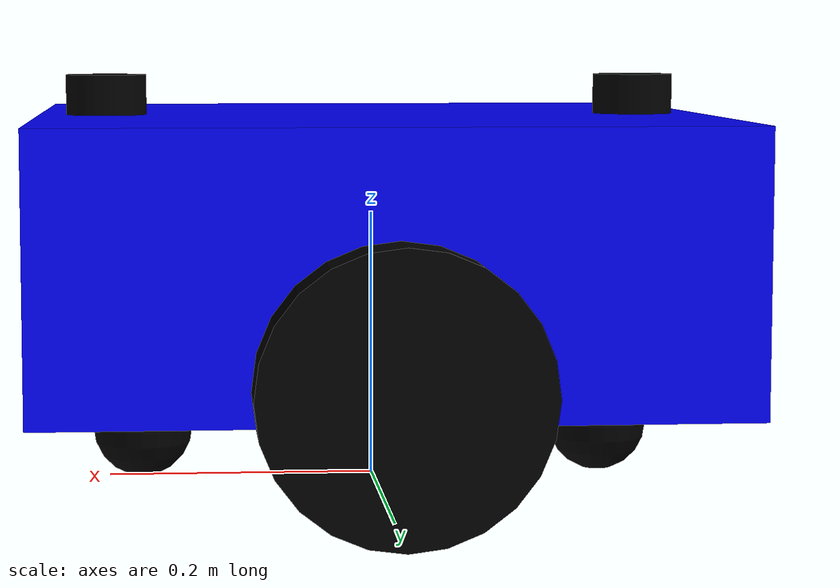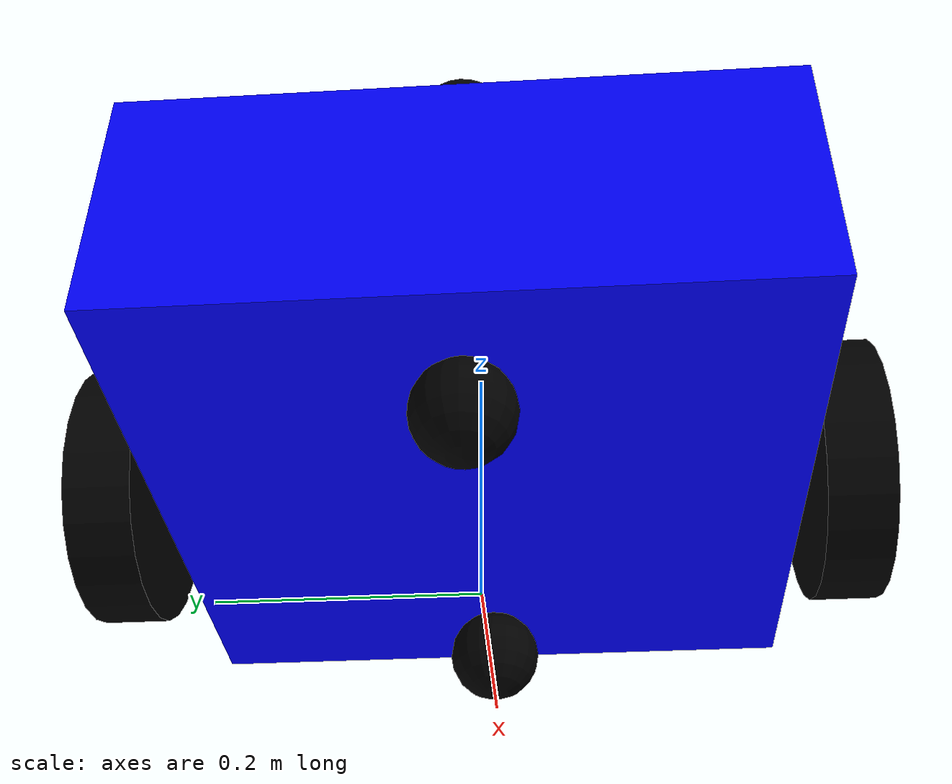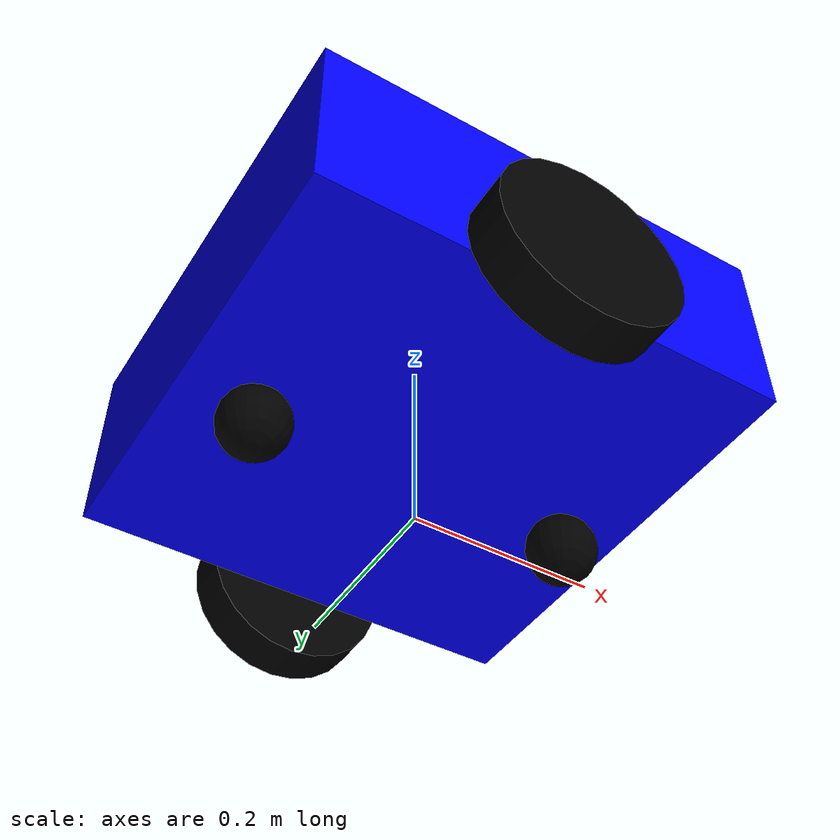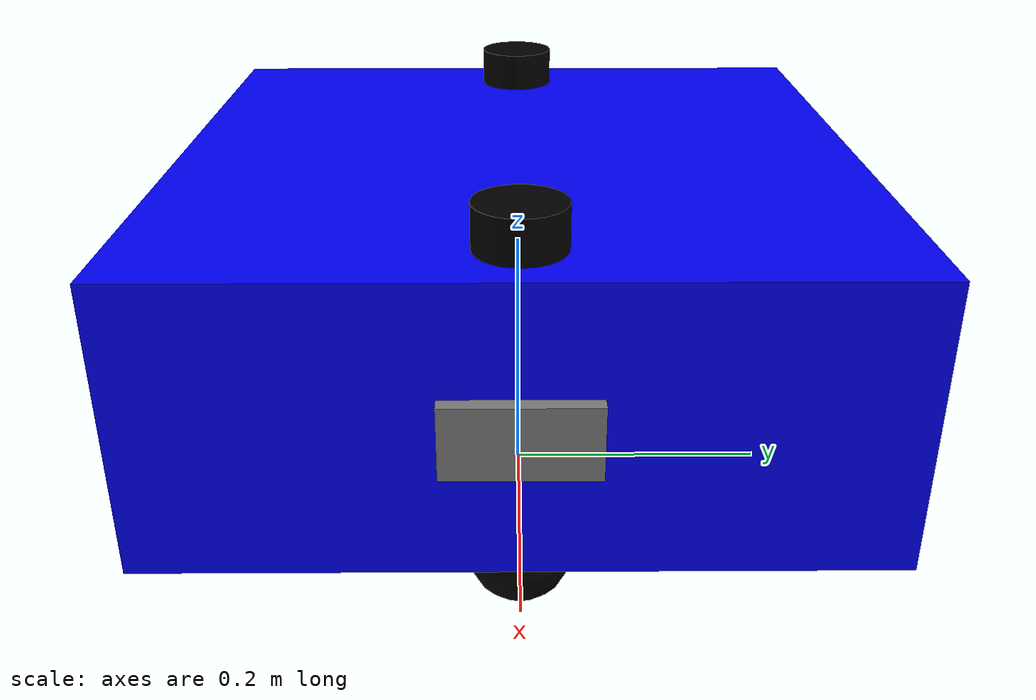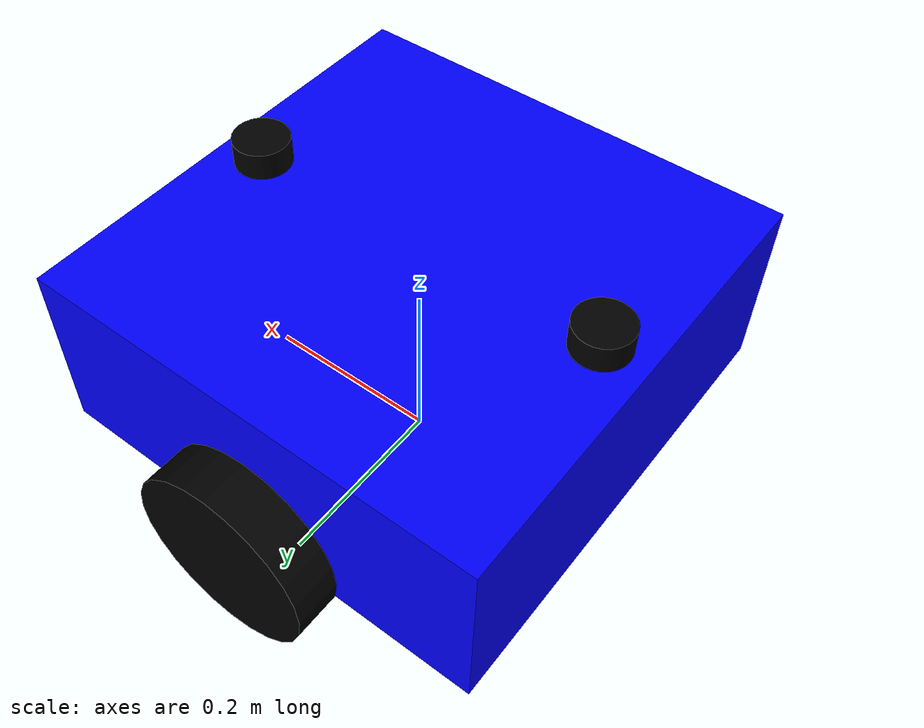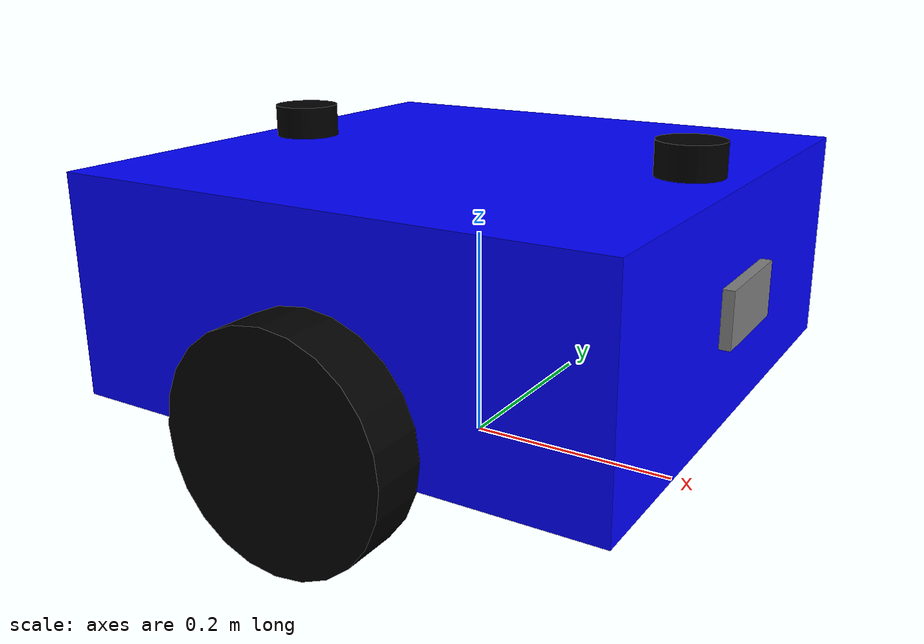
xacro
<?xml version ="1.0"?>

<robot name="agv_mini_manipulator_mobile_base" xmlns:xacro="http://www.ros.org/wiki/xacro">

    <xacro:include filename="$(find agv_mini_manipulator_description)/urdf/common_properties.xacro"/>
    <xacro:include filename="$(find agv_mini_manipulator_description)/urdf/common_hardware.xacro"/>

    <!-- Mobile Base-->
    <xacro:include filename="$(find agv_mini_manipulator_description)/urdf/mobile_base/mobile_base.xacro"/>
    <xacro:include filename="$(find agv_mini_manipulator_description)/urdf/mobile_base/mobile_base_gazebo.xacro"/>
    <!-- Sensors -->
    <xacro:include filename="$(find agv_mini_manipulator_description)/urdf/sensors/camera.xacro"/>
    <xacro:include filename="$(find agv_mini_manipulator_description)/urdf/sensors/lidar.xacro"/>
    <xacro:include filename="$(find agv_mini_manipulator_description)/urdf/sensors/imu.xacro"/>

</robot>

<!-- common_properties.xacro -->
<robot xmlns:xacro="http://www.ros.org/wiki/xacro">
    <!-- Materials -->
    <material name="blue">
        <color rgba="0 0 1 1"/>
    </material>

    <material name="black">
        <color rgba="0 0 0 1"/>
    </material>

    <material name="gray">
        <color rgba="0.5 0.5 0.5 1"/>
    </material>

    <material name="orange">
        <color rgba="1 0.5 0 1"/>
    </material>

    <!-- Common Xacros -->
    <xacro:macro name="box_inertia" params="m o_xyz o_rpy length width height">
            <inertial>
                <mass value="${m}"/>
                <origin xyz="${o_xyz}" rpy="${o_rpy}"/>
                <inertia ixx="${m /12 * (width**2 + height**2)}" ixy="0" ixz="0"
                         iyy="${m /12 * (length**2 + height**2)}" iyz="0"
                         izz="${m /12 * (length**2 + width**2)}"/>
            </inertial>
    </xacro:macro>

    <xacro:macro name="box_link" params="link_name m o_xyz o_rpy length width height material_name">
        <link name="${link_name}">
            <visual>
                <geometry>
                <box size="${length} ${width} ${height}"/>
                </geometry>
                <origin xyz="${o_xyz}" rpy="${o_rpy}"/>
                <material name="${material_name}"/>
            </visual>

            <collision>
                <geometry>
                <box size="${length} ${width} ${height}"/>
                </geometry>
                <origin xyz="${o_xyz}" rpy="${o_rpy}"/>
            </collision>

            <xacro:box_inertia m="${m}" o_xyz="${o_xyz}" o_rpy="${o_rpy}"
            length="${length}" width="${width}" height="${height}"/>
        </link>
    </xacro:macro>

    <xacro:macro name="cylinder_inertia" params="m radius length o_xyz o_rpy">
        <inertial>
            <mass value="${m}"/>
            <origin xyz="${o_xyz}" rpy="${o_rpy}"/>
            <inertia ixx="${m / 12 * (3*radius**2 + length**2)}" ixy="0" ixz="0"
                        iyy="${m / 12 * (3*radius**2 + length**2)}" iyz="0"
                        izz="${m / 2 * radius**2}"/>
        </inertial>
    </xacro:macro>

    <xacro:macro name="cylinder" params="link_name m o_xyz o_rpy radius length material_name">
        <link name="${link_name}">
            <visual>
                <geometry>
                    <cylinder radius="${radius}" length="${length}"/>
                </geometry>
                <origin xyz="${o_xyz}" rpy="${o_rpy}"/>
                <material name="${material_name}"/>
            </visual>

            <collision>
                <geometry>
                    <cylinder radius="${radius}" length="${length}"/>
                </geometry>
                <origin xyz="${o_xyz}" rpy="${o_rpy}"/>
            </collision>

            <xacro:cylinder_inertia
            m="${m}" radius="${radius}" length="${length}"
            o_xyz="${o_xyz}" o_rpy="${o_rpy}"/>
        </link>
    </xacro:macro>

    <xacro:macro name="sphere_inertia" params="m radius o_xyz o_rpy">
        <inertial>
            <mass value="${m}"/>
            <origin xyz="${o_xyz}" rpy="${o_rpy}"/>
            <inertia ixx="${2/5 * m * (radius)**2}" ixy="0" ixz="0"
                     iyy="${2/5 * m * (radius)**2}" iyz="0"
                     izz="${2/5 * m * (radius)**2}"/>
        </inertial>
    </xacro:macro>

    <xacro:macro name="sphere" params="link_name m o_xyz o_rpy radius material_name">
        <link name="${link_name}">
            <visual>
                <geometry>
                <sphere radius="${radius}"/>
                </geometry>
                <origin xyz="${o_xyz}" rpy="${o_rpy}"/>
                <material name="${material_name}"/>
            </visual>

            <collision>
                <geometry>
                <sphere radius="${radius}"/>
                </geometry>
                <origin xyz="${o_xyz}" rpy="${o_rpy}"/>
            </collision>

            <xacro:sphere_inertia
            m="${m}" radius="${radius}"
            o_xyz="${o_xyz}" o_rpy="${o_rpy}"/>
        </link>
    </xacro:macro>

    <!-- Joint Xacros -->
    <xacro:macro name="nonzero_inertia">
        <inertial>
            <mass value="0.0001"/>
            <origin xyz="0 0 0" rpy="0 0 0"/>
            <inertia ixx="1e-9" ixy="0" ixz="0"
                     iyy="1e-9" iyz="0"
                     izz="1e-9"/>
        </inertial>
    </xacro:macro>

    <xacro:macro name="three_axis_joint" params="prefix parent_link">
        <link name="${prefix}_link_x">
            <xacro:nonzero_inertia/>
        </link>
        <joint name="${prefix}_joint_x" type="continuous">
            <parent link="${parent_link}"/>
            <child link="${prefix}_link_x"/>
            <origin xyz="0 0 0" rpy="0 0 0"/>
            <axis xyz="1 0 0"/>
        </joint>

        <link name="${prefix}_link_y">
            <xacro:nonzero_inertia/>
        </link>
        <joint name="${prefix}_joint_y" type="continuous">
            <parent link="${prefix}_link_x"/>
            <child link="${prefix}_link_y"/>
            <origin xyz="0 0 0" rpy="0 0 0"/>
            <axis xyz="0 1 0"/>
        </joint>

        <link name="${prefix}_link_z">
            <xacro:nonzero_inertia/>
        </link>
        <joint name="${prefix}_joint_z" type="continuous">
            <parent link="${prefix}_link_y"/>
            <child link="${prefix}_link_z"/>
            <origin xyz="0 0 0" rpy="0 0 0"/>
            <axis xyz="0 0 1"/>
        </joint>
    </xacro:macro>

</robot>

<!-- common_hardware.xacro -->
<robot xmlns:xacro="http://www.ros.org/wiki/xacro">

    <xacro:macro name="wheel" params="prefix m o_xyz o_rpy wheel_radius wheel_thickness">
        <link name="${prefix}_wheel_link">
            <visual>
                <geometry>
                    <cylinder radius="${wheel_radius}" length="${wheel_thickness}"/>
                </geometry>
                <origin xyz="${o_xyz}" rpy="${o_rpy}"/>
                <material name="black"/>
            </visual>

            <collision>
                <geometry>
                <sphere radius="${wheel_radius}"/>
                </geometry>
                <origin xyz="${o_xyz}" rpy="${o_rpy}"/>
            </collision>

            <xacro:cylinder_inertia
            m="${m}" radius="${wheel_radius}" length="${wheel_thickness}"
            o_xyz="${o_xyz}" o_rpy="${o_rpy}"/>
        </link>
    </xacro:macro>

</robot>

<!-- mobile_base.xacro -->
<robot xmlns:xacro="http://www.ros.org/wiki/xacro">

    <!-- Variables -->
    <xacro:property name="base_length" value="0.5"/>
    <xacro:property name="base_width" value="0.5"/>
    <xacro:property name="base_height" value="0.2"/>

    <xacro:property name="wheel_offset" value="0.075"/>
    <xacro:property name="wheel_thickness" value="0.05"/>
    <xacro:property name="wheel_radius" value="0.1"/>

    <!-- base_footprint_base_link_joint -->
    <link name="base_footprint"/>

    <xacro:box_link link_name="base_link" m="5.0" o_xyz="0 0 0" o_rpy="0 0 0"
    length="${base_length}" width="${base_width}" height="${base_height}"
    material_name="blue"/>

    <joint name="base_footprint_base_link_joint" type="fixed">
        <parent link="base_footprint"/>
        <child link="base_link"/>
        <origin xyz="0 0 ${base_height / 2.0 + wheel_offset}" rpy="0 0 0"/>
    </joint>
    <!-- base_footprint_base_link_joint -->

    <!-- base_link_right_wheel_joint -->
    <xacro:wheel prefix="right" m="2.0" o_xyz="0 0 0" o_rpy="0 0 0" wheel_radius="${wheel_radius}" wheel_thickness="${wheel_thickness}"/>
    <joint name="base_link_right_wheel_joint" type="continuous">
        <parent link="base_link"/>
        <child link="right_wheel_link"/>
        <origin xyz="0.0 ${base_width / 2.0 + wheel_thickness / 2.0} ${-1.0 * (base_height / 2.0 - wheel_radius + wheel_offset)}"
        rpy="${pi / 2.0} 0 0"/>
        <axis xyz="0 0 1"/>
        <limit effort = "20.0" velocity="10.0"/>
    </joint>
    <!-- base_link_right_wheel_joint -->

    <!-- base_link_left_wheel_joint -->
    <xacro:wheel prefix="left" m="2.0" o_xyz="0 0 0" o_rpy="0 0 0" wheel_radius="${wheel_radius}" wheel_thickness="${wheel_thickness}"/>
    <joint name="base_link_left_wheel_joint" type="continuous">
        <parent link="base_link"/>
        <child link="left_wheel_link"/>
        <origin xyz="0.0 ${-1.0*(base_width / 2.0 + wheel_thickness / 2.0)} ${-1.0 * (base_height / 2.0 - wheel_radius + wheel_offset)}"
        rpy="${pi / 2.0} 0 0"/>
        <axis xyz="0 0 1"/>
        <limit effort = "20.0" velocity="10.0"/>
    </joint>
    <!-- base_link_left_wheel_joint -->

    <!-- base_link_front_wheel_joint -->
    <xacro:sphere link_name="front_castor_wheel_link" m="0.75" o_xyz="0 0 0" o_rpy="0 0 0"
    radius="${wheel_offset/2.0}" material_name="black"/>
    <joint name="base_link_front_wheel_joint" type="fixed">
        <parent link="base_link"/>
        <child link="front_castor_wheel_link"/>
        <origin xyz="${base_length / 2.0 - 0.075} 0.0 ${-1.0*(base_height / 2.0 + wheel_offset / 2.0)}"
        rpy="0 0 0"/>
    </joint>
    <xacro:three_axis_joint prefix="front_castor_wheel" parent_link="front_castor_wheel_link"/>
    <!-- base_link_front_wheel_joint -->

    <!-- base_link_back_wheel_joint -->
    <xacro:sphere link_name="back_castor_wheel_link" m="0.75" o_xyz="0 0 0" o_rpy="0 0 0"
    radius="${wheel_offset/2.0}" material_name="black"/>

    <joint name="base_link_back_wheel_joint" type="fixed">
        <parent link="base_link"/>
        <child link="back_castor_wheel_link"/>
        <origin xyz="${-1.0*(base_length / 2.0 - 0.075)} 0.0 ${-1.0*(base_height / 2.0 + wheel_offset / 2.0)}"
        rpy="0 0 0"/>
    </joint>
    <xacro:three_axis_joint prefix="back_castor_wheel" parent_link="back_castor_wheel_link"/>
    <!-- base_link_back_wheel_joint -->

</robot>

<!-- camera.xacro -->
<robot xmlns:xacro="http://www.ros.org/wiki/xacro">

    <xacro:property name="camera_length" value="0.01"/>
    <xacro:property name="camera_width" value="0.1"/>
    <xacro:property name="camera_height" value="0.05"/>

   <!-- base_link_rgbd_camera_joint -->
    <xacro:box_link m="0.5" o_xyz="0 0 0" o_rpy="0 0 0"
    link_name="rgb_camera_link" length="${camera_length}"
    width="${camera_width}" height="${camera_height}" material_name="gray"/>

    <joint name="base_link_rgbd_camera_joint" type="fixed">
        <parent link="base_link"/>
        <child link="rgb_camera_link"/>
        <origin xyz="${base_length / 2.0 + camera_length / 2.0} 0 0" rpy="0 0 0"/>
    </joint>
    <!-- base_link_rgbd_camera_joint -->

    <link name="rgb_camera_optical_link"/>
    <joint name="rgb_camera_optical_joint" type="fixed">
        <parent link="rgb_camera_link"/>
        <child link="rgb_camera_optical_link"/>
        <origin xyz="0 0 0" rpy="${-pi/2.0} 0 ${-pi/2.0}"/>
    </joint>

    <gazebo reference="rgb_camera_link">
        <sensor name="rgb_camera" type="camera">
            <always_on>1</always_on>
            <update_rate>10</update_rate>
            <visualize>true</visualize>
            <topic>camera/image_raw</topic>
            <camera>
                <optical_frame_id>rgb_camera_optical_link</optical_frame_id>
                <camera_info_topic>camera/camera_info</camera_info_topic>

                <horizontal_fov>1.658</horizontal_fov>

                    <!-- fx = fy = width / ( 2 * tan (hfov / 2 ) ) -->
                    <!-- cx = ( width - 1 ) / 2 -->
                    <!-- cy = ( height - 1 ) / 2 -->

                <distortion>
                    <k1>0.0</k1>
                    <k2>0.0</k2>
                    <k3>0.0</k3>
                    <p1>0.0</p1>
                    <p2>0.0</p2>
                    <center>0.5 0.5</center>
                </distortion>

                <image>
                    <width>320</width>
                    <height>240</height>
                    <format>R8G8B8</format>
                </image>

                <clip>
                    <near>0.01</near>
                    <far>200</far>
                </clip>

                <noise>
                    <type>gaussian</type>
                    <mean>0</mean>
                    <stddev>0.007</stddev>
                </noise>
            </camera>
       </sensor>
    </gazebo>

</robot>

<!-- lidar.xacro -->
<robot xmlns:xacro="http://www.ros.org/wiki/xacro" >
    <!-- Variables -->
    <xacro:property name="lidar_height" value="0.03"/>
    <xacro:property name="lidar_radius" value="0.03"/>

    <!-- base_link_lidar_front_joint -->
    <xacro:cylinder link_name="front_lidar_link" m="0.5" o_xyz="0 0 0" o_rpy="0 0 0"
    radius="${lidar_radius}" length="${lidar_height}" material_name="black"/>

    <joint name="base_link_lidar_front_joint" type="fixed">
        <parent link="base_link"/>
        <child link="front_lidar_link"/>
        <origin xyz="${base_length / 2.0 - 0.05} 0.0 ${base_height / 2.0 + lidar_height / 2.0}"
        rpy="0 0 0"/>
    </joint>

    <gazebo reference="front_lidar_link">
        <sensor name="front_lidar_link" type="gpu_lidar">
                <topic>scan/front</topic>
                <visualize>true</visualize>
                <update_rate>10</update_rate>
                <gz_frame_id>front_lidar_link</gz_frame_id>

                <lidar>
                    <scan>
                        <horizontal>
                            <samples>20</samples>
                            <resolution>1</resolution>
                            <min_angle>${-5*pi / 8.0}</min_angle>
                            <max_angle>${5*pi / 8.0}</max_angle>
                        </horizontal>
                    </scan>
                    <range>
                        <min>0.05</min>
                        <max>15</max>
                        <resolution>0.01</resolution>
                    </range>
                    <noise>
                        <type>gaussian</type>
                        <mean>0</mean>
                        <stddev>0.01</stddev>
                    </noise>
                </lidar>

            </sensor>
    </gazebo>

    <!-- base_link_lidar_front_joint -->

    <!-- base_link_lidar_back_joint -->
    <xacro:cylinder link_name="back_lidar_link" m="0.5" o_xyz="0 0 0" o_rpy="0 0 0"
    radius="${lidar_radius}" length="${lidar_height}" material_name="black"/>

    <joint name="base_link_lidar_back_joint" type="fixed">
        <parent link="base_link"/>
        <child link="back_lidar_link"/>
        <origin xyz="${-1.0*(base_length / 2.0 - 0.05)} 0.0 ${base_height / 2.0 + lidar_height / 2.0}"
        rpy="0 0 ${pi / 2.0}"/>
    </joint>

    <gazebo reference="back_lidar_link">
        <sensor name="back_lidar_link" type="gpu_lidar">
                <topic>scan/back</topic>
                <visualize>true</visualize>
                <update_rate>10</update_rate>
                <gz_frame_id>back_lidar_link</gz_frame_id>

                <lidar>
                    <scan>
                        <horizontal>
                            <samples>20</samples>
                            <resolution>1</resolution>
                            <min_angle>${-1*pi / 8.0}</min_angle>
                            <max_angle>${9*pi / 8.0}</max_angle>
                        </horizontal>
                    </scan>
                    <range>
                        <min>0.05</min>
                        <max>15</max>
                        <resolution>0.01</resolution>
                    </range>
                    <noise>
                        <type>gaussian</type>
                        <mean>0</mean>
                        <stddev>0.01</stddev>
                    </noise>
                </lidar>

            </sensor>
    </gazebo>

    <!-- base_link_lidar_back_joint -->

</robot>

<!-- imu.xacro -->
<robot xmlns:xacro="http://www.ros.org/wiki/xacro">

   <!-- base_link_imu_joint -->
    <xacro:box_link m="0.5" o_xyz="0 0 0" o_rpy="0 0 0"
    link_name="imu_link" length="0.05"
    width="0.05" height="0.01" material_name="gray"/>

    <joint name="base_link_imu_joint" type="fixed">
        <parent link="base_link"/>
        <child link="imu_link"/>
        <origin xyz="0 0 0" rpy="0 0 0"/>
    </joint>

    <gazebo reference="imu_link">
      <sensor name="imu_sensor" type="imu">
        <always_on>1</always_on>
        <update_rate>50</update_rate>
        <topic>imu/data</topic>
        <gz_frame_id>imu_link</gz_frame_id>

        <imu>
          <enable_orientation>0</enable_orientation>
          <angular_velocity>
            <x>
              <noise type="gaussian">
                <mean>0</mean>
                <stddev>0.009</stddev>
                <bias_mean>0.00075</bias_mean>
                <bias_stddev>0.005</bias_stddev>
                <dynamic_bias_stddev>0.00002</dynamic_bias_stddev>
                <dynamic_bias_correlation_time>400.0</dynamic_bias_correlation_time>
                <precision>0.00025</precision>
              </noise>
            </x>
            <y>
              <noise type="gaussian">
                <mean>0</mean>
                <stddev>0.009</stddev>
                <bias_mean>0.00075</bias_mean>
                <bias_stddev>0.005</bias_stddev>
                <dynamic_bias_stddev>0.00002</dynamic_bias_stddev>
                <dynamic_bias_correlation_time>400.0</dynamic_bias_correlation_time>
                <precision>0.00025</precision>
              </noise>
            </y>
            <z>
              <noise type="gaussian">
                <mean>0</mean>
                <stddev>0.009</stddev>
                <bias_mean>0.00075</bias_mean>
                <bias_stddev>0.005</bias_stddev>
                <dynamic_bias_stddev>0.00002</dynamic_bias_stddev>
                <dynamic_bias_correlation_time>400.0</dynamic_bias_correlation_time>
                <precision>0.00025</precision>
              </noise>
            </z>
          </angular_velocity>
          <linear_acceleration>
            <x>
              <noise type="gaussian">
                <mean>0</mean>
                <stddev>0.021</stddev>
                <bias_mean>0.05</bias_mean>
                <bias_stddev>0.0075</bias_stddev>
                <dynamic_bias_stddev>0.000375</dynamic_bias_stddev>
                <dynamic_bias_correlation_time>175.0</dynamic_bias_correlation_time>
                <precision>0.005</precision>
              </noise>
            </x>
            <y>
              <noise type="gaussian">
                <mean>0</mean>
                <stddev>0.021</stddev>
                <bias_mean>0.05</bias_mean>
                <bias_stddev>0.0075</bias_stddev>
                <dynamic_bias_stddev>0.000375</dynamic_bias_stddev>
                <dynamic_bias_correlation_time>175.0</dynamic_bias_correlation_time>
                <precision>0.005</precision>
              </noise>
            </y>
            <z>
              <noise type="gaussian">
                <mean>0</mean>
                <stddev>0.021</stddev>
                <bias_mean>0.05</bias_mean>
                <bias_stddev>0.0075</bias_stddev>
                <dynamic_bias_stddev>0.000375</dynamic_bias_stddev>
                <dynamic_bias_correlation_time>175.0</dynamic_bias_correlation_time>
                <precision>0.005</precision>
              </noise>
            </z>
          </linear_acceleration>
        </imu>
      </sensor>
    </gazebo>

    <gazebo>
        <plugin
            filename="gz-sim-imu-system"
            name="gz::sim::systems::Imu" >
        </plugin>
    </gazebo>

    <!-- base_link_imu_joint -->

</robot>
